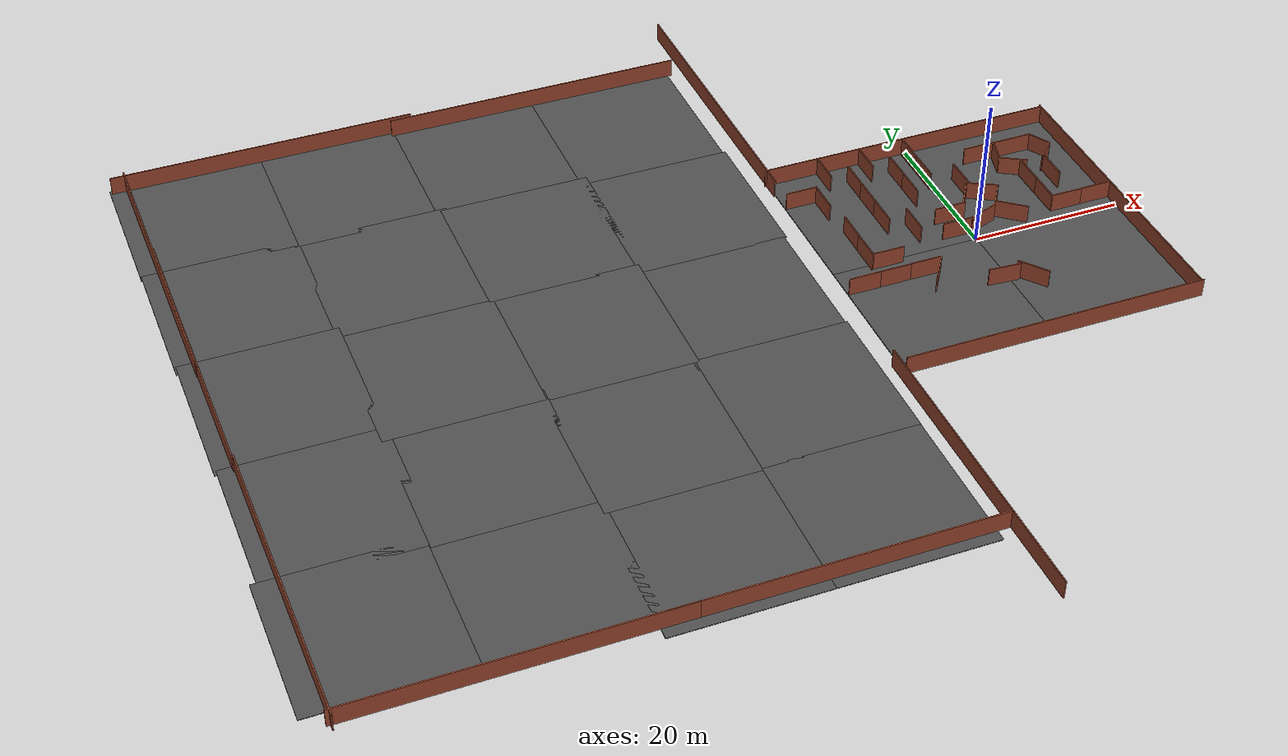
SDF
<sdf version="1.6">
 <world name="default">
  <light name="sun" type="directional">
   <pose>0 0 10 0 -0 0</pose>
   <diffuse>0.8 0.8 0.8 1</diffuse>
   <specular>0.2 0.2 0.2 1</specular>
   <attenuation>
    <range>1000</range>
    <constant>0.9</constant>
    <linear>0.01</linear>
    <quadratic>0.001</quadratic>
   </attenuation>
   <direction>-0.5 0.1 -0.9</direction>
  </light>
  <model name="ground_plane">
   <static>1</static>
   <link name="link">
    <collision name="collision">
     <geometry><plane><normal>0 0 1</normal><size>100 100</size></plane></geometry>
     <surface><friction><ode><mu>100</mu><mu2>50</mu2></ode></friction></surface>
    </collision>
    <visual name="visual">
     <cast_shadows>0</cast_shadows>
     <geometry><plane><normal>0 0 1</normal><size>100 100</size></plane></geometry>
     <material>
      <script><uri>file://media/materials/scripts/gazebo.material</uri><name>Gazebo/Grey</name></script>
     </material>
    </visual>
   </link>
  </model>
  <physics name="default_physics" default="0" type="ode">
   <max_step_size>0.001</max_step_size>
   <real_time_factor>1</real_time_factor>
   <real_time_update_rate>1000</real_time_update_rate>
  </physics>
  <scene><ambient>0.4 0.4 0.4 1</ambient><background>0.7 0.7 0.7 1</background><shadows>1</shadows></scene>
  <spherical_coordinates>
   <surface_model>EARTH_WGS84</surface_model>
   <latitude_deg>0</latitude_deg>
   <longitude_deg>0</longitude_deg>
   <elevation>0</elevation>
   <heading_deg>0</heading_deg>
  </spherical_coordinates>
  <model name="asphalt_plane">
   <static>1</static>
   <link name="link">
    <collision name="collision"><geometry><box><size>20 20 0.1</size></box></geometry></collision>
    <visual name="visual">
     <cast_shadows>0</cast_shadows>
     <geometry><box><size>20 20 0.1</size></box></geometry>
     <material>
      <script>
       <uri>model://asphalt_plane/materials/scripts</uri>
       <uri>model://asphalt_plane/materials/textures</uri>
       <name>vrc/asphalt</name>
      </script>
     </material>
    </visual>
   </link>
   <pose>10 10 0 0 -0 0</pose>
  </model>
  <model name="asphalt_plane_0">
   <static>1</static>
   <link name="link">
    <collision name="collision"><geometry><box><size>20 20 0.1</size></box></geometry></collision>
    <visual name="visual">
     <cast_shadows>0</cast_shadows>
     <geometry><box><size>20 20 0.1</size></box></geometry>
     <material>
      <script>
       <uri>model://asphalt_plane/materials/scripts</uri>
       <uri>model://asphalt_plane/materials/textures</uri>
       <name>vrc/asphalt</name>
      </script>
     </material>
    </visual>
   </link>
   <pose>-10 10 0 0 -0 0</pose>
  </model>
  <model name="asphalt_plane_1">
   <static>1</static>
   <link name="link">
    <collision name="collision"><geometry><box><size>20 20 0.1</size></box></geometry></collision>
    <visual name="visual">
     <cast_shadows>0</cast_shadows>
     <geometry><box><size>20 20 0.1</size></box></geometry>
     <material>
      <script>
       <uri>model://asphalt_plane/materials/scripts</uri>
       <uri>model://asphalt_plane/materials/textures</uri>
       <name>vrc/asphalt</name>
      </script>
     </material>
    </visual>
   </link>
   <pose>-10 -10 0 0 -0 0</pose>
  </model>
  <model name="asphalt_plane_2">
   <static>1</static>
   <link name="link">
    <collision name="collision"><geometry><box><size>20 20 0.1</size></box></geometry></collision>
    <visual name="visual">
     <cast_shadows>0</cast_shadows>
     <geometry><box><size>20 20 0.1</size></box></geometry>
     <material>
      <script>
       <uri>model://asphalt_plane/materials/scripts</uri>
       <uri>model://asphalt_plane/materials/textures</uri>
       <name>vrc/asphalt</name>
      </script>
     </material>
    </visual>
   </link>
   <pose>10 -10 0 0 -0 0</pose>
  </model>
  <model name="longwall">
   <pose>0.229981 -20.0786 0 0 -0 0</pose>
   <link name="Wall_0">
    <collision name="Wall_0_Collision">
     <geometry><box><size>40.5 0.15 2.5</size></box></geometry>
     <pose>0 0 1.25 0 -0 0</pose>
    </collision>
    <visual name="Wall_0_Visual">
     <pose>0 0 1.25 0 -0 0</pose>
     <geometry><box><size>40.5 0.15 2.5</size></box></geometry>
     <material>
      <script><uri>file://media/materials/scripts/gazebo.material</uri><name>Gazebo/Bricks</name></script>
      <ambient>1 1 1 1</ambient>
     </material>
    </visual>
    <pose>1e-06 0 0 0 -0 0</pose>
   </link>
   <static>1</static>
  </model>
  <model name="longwall_0_clone">
   <pose>20.1053 0.258056 0 0 0 -1.57092</pose>
   <link name="Wall_0">
    <collision name="Wall_0_Collision">
     <geometry><box><size>40.5 0.15 2.5</size></box></geometry>
     <pose>0 0 1.25 0 -0 0</pose>
    </collision>
    <visual name="Wall_0_Visual">
     <pose>0 0 1.25 0 -0 0</pose>
     <geometry><box><size>40.5 0.15 2.5</size></box></geometry>
     <material>
      <script><uri>file://media/materials/scripts/gazebo.material</uri><name>Gazebo/Bricks</name></script>
      <ambient>1 1 1 1</ambient>
     </material>
    </visual>
    <pose>1e-06 0 0 0 -0 0</pose>
   </link>
   <static>1</static>
  </model>
  <model name="longwall_clone">
   <pose>-0.214439 20.0862 0 0 -0 0</pose>
   <link name="Wall_0">
    <collision name="Wall_0_Collision">
     <geometry><box><size>40.5 0.15 2.5</size></box></geometry>
     <pose>0 0 1.25 0 -0 0</pose>
    </collision>
    <visual name="Wall_0_Visual">
     <pose>0 0 1.25 0 -0 0</pose>
     <geometry><box><size>40.5 0.15 2.5</size></box></geometry>
     <material>
      <script><uri>file://media/materials/scripts/gazebo.material</uri><name>Gazebo/Bricks</name></script>
      <ambient>1 1 1 1</ambient>
     </material>
    </visual>
    <pose>1e-06 0 0 0 -0 0</pose>
   </link>
   <static>1</static>
  </model>
  <model name="room1">
   <pose>13.1523 12.4323 0 0 -0 0</pose>
   <link name="Wall_11">
    <collision name="Wall_11_Collision">
     <geometry><box><size>3.25 0.15 2.5</size></box></geometry>
     <pose>0 0 1.25 0 -0 0</pose>
    </collision>
    <visual name="Wall_11_Visual">
     <pose>0 0 1.25 0 -0 0</pose>
     <geometry><box><size>3.25 0.15 2.5</size></box></geometry>
     <material>
      <script><uri>file://media/materials/scripts/gazebo.material</uri><name>Gazebo/Bricks</name></script>
      <ambient>1 1 1 1</ambient>
     </material>
    </visual>
    <pose>3.12132 1.19483 0 0 0 -1.0472</pose>
   </link>
   <link name="Wall_12">
    <collision name="Wall_12_Collision">
     <geometry><box><size>3.5 0.15 2.5</size></box></geometry>
     <pose>0 0 1.25 0 -0 0</pose>
    </collision>
    <visual name="Wall_12_Visual">
     <pose>0 0 1.25 0 -0 0</pose>
     <geometry><box><size>3.5 0.15 2.5</size></box></geometry>
     <material>
      <script><uri>file://media/materials/scripts/gazebo.material</uri><name>Gazebo/Bricks</name></script>
      <ambient>1 1 1 1</ambient>
     </material>
    </visual>
    <pose>2.71192 -1.33192 0 0 0 -2.35619</pose>
   </link>
   <link name="Wall_7">
    <collision name="Wall_7_Collision">
     <geometry><box><size>5.52935 0.15 2.5</size></box></geometry>
     <pose>0 0 1.25 0 -0 0</pose>
    </collision>
    <visual name="Wall_7_Visual">
     <pose>0 0 1.25 0 -0 0</pose>
     <geometry><box><size>5.52935 0.15 2.5</size></box></geometry>
     <material>
      <script><uri>file://media/materials/scripts/gazebo.material</uri><name>Gazebo/Bricks</name></script>
      <ambient>1 1 1 1</ambient>
     </material>
    </visual>
    <pose>-0.343285 2.51793 0 0 0 -3.13444</pose>
   </link>
   <link name="Wall_8">
    <collision name="Wall_8_Collision">
     <geometry><box><size>3.5 0.15 2.5</size></box></geometry>
     <pose>0 0 1.25 0 -0 0</pose>
    </collision>
    <visual name="Wall_8_Visual">
     <pose>0 0 1.25 0 -0 0</pose>
     <geometry><box><size>3.5 0.15 2.5</size></box></geometry>
     <material>
      <script><uri>file://media/materials/scripts/gazebo.material</uri><name>Gazebo/Bricks</name></script>
      <ambient>1 1 1 1</ambient>
     </material>
    </visual>
    <pose>-3.46641 0.880761 0 0 0 -1.8326</pose>
   </link>
   <link name="Wall_9">
    <collision name="Wall_9_Collision">
     <geometry><box><size>3.75 0.15 2.5</size></box></geometry>
     <pose>0 0 1.25 0 -0 0</pose>
    </collision>
    <visual name="Wall_9_Visual">
     <pose>0 0 1.25 0 -0 0</pose>
     <geometry><box><size>3.75 0.15 2.5</size></box></geometry>
     <material>
      <script><uri>file://media/materials/scripts/gazebo.material</uri><name>Gazebo/Bricks</name></script>
      <ambient>1 1 1 1</ambient>
     </material>
    </visual>
    <pose>-2.34109 -1.63716 0 0 0 -0.523599</pose>
   </link>
   <static>1</static>
  </model>
  <model name="worlds_1">
   <pose>3 10.4406 0 0 -0 0</pose>
   <link name="Wall_0">
    <collision name="Wall_0_Collision">
     <geometry><box><size>4.25 0.15 2.5</size></box></geometry>
     <pose>0 0 1.25 0 -0 0</pose>
    </collision>
    <visual name="Wall_0_Visual">
     <pose>0 0 1.25 0 -0 0</pose>
     <geometry><box><size>4.25 0.15 2.5</size></box></geometry>
     <material>
      <script><uri>file://media/materials/scripts/gazebo.material</uri><name>Gazebo/Bricks</name></script>
      <ambient>1 1 1 1</ambient>
     </material>
    </visual>
    <pose>0 -0 0 0 -0 1.5708</pose>
   </link>
   <static>1</static>
  </model>
  <model name="worlds_2">
   <pose>4.42901 7.33195 0 0 -0 1.08023</pose>
   <link name="Wall_0">
    <collision name="Wall_0_Collision">
     <geometry><box><size>4.25 0.15 2.5</size></box></geometry>
     <pose>0 0 1.25 0 -0 0</pose>
    </collision>
    <visual name="Wall_0_Visual">
     <pose>0 0 1.25 0 -0 0</pose>
     <geometry><box><size>4.25 0.15 2.5</size></box></geometry>
     <material>
      <script><uri>file://media/materials/scripts/gazebo.material</uri><name>Gazebo/Bricks</name></script>
      <ambient>1 1 1 1</ambient>
     </material>
    </visual>
    <pose>0 -0 0 0 -0 1.5708</pose>
   </link>
   <static>1</static>
  </model>
  <model name="worlds_0_clone">
   <pose>-1 -9 0 0 -0 1.49697</pose>
   <link name="Wall_0">
    <collision name="Wall_0_Collision">
     <geometry><box><size>4.25 0.15 2.5</size></box></geometry>
     <pose>0 0 1.25 0 -0 0</pose>
    </collision>
    <visual name="Wall_0_Visual">
     <pose>0 0 1.25 0 -0 0</pose>
     <geometry><box><size>4.25 0.15 2.5</size></box></geometry>
     <material>
      <script><uri>file://media/materials/scripts/gazebo.material</uri><name>Gazebo/Bricks</name></script>
      <ambient>1 1 1 1</ambient>
     </material>
    </visual>
    <pose>0 -0 0 0 -0 1.5708</pose>
   </link>
   <static>1</static>
  </model>
  <model name="worlds_2_clone">
   <pose>2.34689 -10.1873 0 0 -0 0.67691</pose>
   <link name="Wall_0">
    <collision name="Wall_0_Collision">
     <geometry><box><size>4.25 0.15 2.5</size></box></geometry>
     <pose>0 0 1.25 0 -0 0</pose>
    </collision>
    <visual name="Wall_0_Visual">
     <pose>0 0 1.25 0 -0 0</pose>
     <geometry><box><size>4.25 0.15 2.5</size></box></geometry>
     <material>
      <script><uri>file://media/materials/scripts/gazebo.material</uri><name>Gazebo/Bricks</name></script>
      <ambient>1 1 1 1</ambient>
     </material>
    </visual>
    <pose>0 -0 0 0 -0 1.5708</pose>
   </link>
   <static>1</static>
  </model>
  <model name="worlds_1_clone">
   <pose>11.6021 8.07399 0 0 -0 0</pose>
   <link name="Wall_0">
    <collision name="Wall_0_Collision">
     <geometry><box><size>4.25 0.15 2.5</size></box></geometry>
     <pose>0 0 1.25 0 -0 0</pose>
    </collision>
    <visual name="Wall_0_Visual">
     <pose>0 0 1.25 0 -0 0</pose>
     <geometry><box><size>4.25 0.15 2.5</size></box></geometry>
     <material>
      <script><uri>file://media/materials/scripts/gazebo.material</uri><name>Gazebo/Bricks</name></script>
      <ambient>1 1 1 1</ambient>
     </material>
    </visual>
    <pose>0 -0 0 0 -0 1.5708</pose>
   </link>
   <static>1</static>
  </model>
  <model name="worlds_1_clone_0">
   <pose>11.6134 3.89135 0 0 -0 0</pose>
   <link name="Wall_0">
    <collision name="Wall_0_Collision">
     <geometry><box><size>4.25 0.15 2.5</size></box></geometry>
     <pose>0 0 1.25 0 -0 0</pose>
    </collision>
    <visual name="Wall_0_Visual">
     <pose>0 0 1.25 0 -0 0</pose>
     <geometry><box><size>4.25 0.15 2.5</size></box></geometry>
     <material>
      <script><uri>file://media/materials/scripts/gazebo.material</uri><name>Gazebo/Bricks</name></script>
      <ambient>1 1 1 1</ambient>
     </material>
    </visual>
    <pose>0 -0 0 0 -0 1.5708</pose>
   </link>
   <static>1</static>
  </model>
  <model name="worlds_1_clone_0_clone">
   <pose>13.736 1.79456 0 0 0 -1.57092</pose>
   <link name="Wall_0">
    <collision name="Wall_0_Collision">
     <geometry><box><size>4.25 0.15 2.5</size></box></geometry>
     <pose>0 0 1.25 0 -0 0</pose>
    </collision>
    <visual name="Wall_0_Visual">
     <pose>0 0 1.25 0 -0 0</pose>
     <geometry><box><size>4.25 0.15 2.5</size></box></geometry>
     <material>
      <script><uri>file://media/materials/scripts/gazebo.material</uri><name>Gazebo/Bricks</name></script>
      <ambient>1 1 1 1</ambient>
     </material>
    </visual>
    <pose>0 -0 0 0 -0 1.5708</pose>
   </link>
   <static>1</static>
  </model>
  <model name="worlds_1_clone_0_clone_clone">
   <pose>17.9203 1.82357 0 0 0 -1.57092</pose>
   <link name="Wall_0">
    <collision name="Wall_0_Collision">
     <geometry><box><size>4.25 0.15 2.5</size></box></geometry>
     <pose>0 0 1.25 0 -0 0</pose>
    </collision>
    <visual name="Wall_0_Visual">
     <pose>0 0 1.25 0 -0 0</pose>
     <geometry><box><size>4.25 0.15 2.5</size></box></geometry>
     <material>
      <script><uri>file://media/materials/scripts/gazebo.material</uri><name>Gazebo/Bricks</name></script>
      <ambient>1 1 1 1</ambient>
     </material>
    </visual>
    <pose>0 -0 0 0 -0 1.5708</pose>
   </link>
   <static>1</static>
  </model>
  <model name="worlds_1_clone_0_clone_clone_0">
   <pose>8 15 0 0 0 -1.57092</pose>
   <link name="Wall_0">
    <collision name="Wall_0_Collision">
     <geometry><box><size>4.25 0.15 2.5</size></box></geometry>
     <pose>0 0 1.25 0 -0 0</pose>
    </collision>
    <visual name="Wall_0_Visual">
     <pose>0 0 1.25 0 -0 0</pose>
     <geometry><box><size>4.25 0.15 2.5</size></box></geometry>
     <material>
      <script><uri>file://media/materials/scripts/gazebo.material</uri><name>Gazebo/Bricks</name></script>
      <ambient>1 1 1 1</ambient>
     </material>
    </visual>
    <pose>0 -0 0 0 -0 1.5708</pose>
   </link>
   <static>1</static>
  </model>
  <model name="worlds_1_clone_0_clone_clone_0_clone">
   <pose>-17.8162 14.4688 0 0 0 -1.57092</pose>
   <link name="Wall_0">
    <collision name="Wall_0_Collision">
     <geometry><box><size>4.25 0.15 2.5</size></box></geometry>
     <pose>0 0 1.25 0 -0 0</pose>
    </collision>
    <visual name="Wall_0_Visual">
     <pose>0 0 1.25 0 -0 0</pose>
     <geometry><box><size>4.25 0.15 2.5</size></box></geometry>
     <material>
      <script><uri>file://media/materials/scripts/gazebo.material</uri><name>Gazebo/Bricks</name></script>
      <ambient>1 1 1 1</ambient>
     </material>
    </visual>
    <pose>0 -0 0 0 -0 1.5708</pose>
   </link>
   <static>1</static>
  </model>
  <model name="worlds_1_clone_1">
   <pose>-13 18 0 0 -0 0</pose>
   <link name="Wall_0">
    <collision name="Wall_0_Collision">
     <geometry><box><size>4.25 0.15 2.5</size></box></geometry>
     <pose>0 0 1.25 0 -0 0</pose>
    </collision>
    <visual name="Wall_0_Visual">
     <pose>0 0 1.25 0 -0 0</pose>
     <geometry><box><size>4.25 0.15 2.5</size></box></geometry>
     <material>
      <script><uri>file://media/materials/scripts/gazebo.material</uri><name>Gazebo/Bricks</name></script>
      <ambient>1 1 1 1</ambient>
     </material>
    </visual>
    <pose>0 -0 0 0 -0 1.5708</pose>
   </link>
   <static>1</static>
  </model>
  <model name="worlds_1_clone_1_clone">
   <pose>-15.7734 12.3225 0 0 -0 0</pose>
   <link name="Wall_0">
    <collision name="Wall_0_Collision">
     <geometry><box><size>4.25 0.15 2.5</size></box></geometry>
     <pose>0 0 1.25 0 -0 0</pose>
    </collision>
    <visual name="Wall_0_Visual">
     <pose>0 0 1.25 0 -0 0</pose>
     <geometry><box><size>4.25 0.15 2.5</size></box></geometry>
     <material>
      <script><uri>file://media/materials/scripts/gazebo.material</uri><name>Gazebo/Bricks</name></script>
      <ambient>1 1 1 1</ambient>
     </material>
    </visual>
    <pose>0 -0 0 0 -0 1.5708</pose>
   </link>
   <static>1</static>
  </model>
  <model name="worlds_1_clone_1_clone_clone">
   <pose>-15.0638 5.287 0 0 -0 0</pose>
   <link name="Wall_0">
    <collision name="Wall_0_Collision">
     <geometry><box><size>4.25 0.15 2.5</size></box></geometry>
     <pose>0 0 1.25 0 -0 0</pose>
    </collision>
    <visual name="Wall_0_Visual">
     <pose>0 0 1.25 0 -0 0</pose>
     <geometry><box><size>4.25 0.15 2.5</size></box></geometry>
     <material>
      <script><uri>file://media/materials/scripts/gazebo.material</uri><name>Gazebo/Bricks</name></script>
      <ambient>1 1 1 1</ambient>
     </material>
    </visual>
    <pose>0 -0 0 0 -0 1.5708</pose>
   </link>
   <static>1</static>
  </model>
  <model name="worlds_1_clone_1_clone_clone_0">
   <pose>-15.0769 1.18275 0 0 -0 0</pose>
   <link name="Wall_0">
    <collision name="Wall_0_Collision">
     <geometry><box><size>4.25 0.15 2.5</size></box></geometry>
     <pose>0 0 1.25 0 -0 0</pose>
    </collision>
    <visual name="Wall_0_Visual">
     <pose>0 0 1.25 0 -0 0</pose>
     <geometry><box><size>4.25 0.15 2.5</size></box></geometry>
     <material>
      <script><uri>file://media/materials/scripts/gazebo.material</uri><name>Gazebo/Bricks</name></script>
      <ambient>1 1 1 1</ambient>
     </material>
    </visual>
    <pose>0 -0 0 0 -0 1.5708</pose>
   </link>
   <static>1</static>
  </model>
  <model name="worlds_1_clone_0_clone_clone_0_clone_clone">
   <pose>-17.8054 -4.32089 0 0 0 -1.57092</pose>
   <link name="Wall_0">
    <collision name="Wall_0_Collision">
     <geometry><box><size>4.25 0.15 2.5</size></box></geometry>
     <pose>0 0 1.25 0 -0 0</pose>
    </collision>
    <visual name="Wall_0_Visual">
     <pose>0 0 1.25 0 -0 0</pose>
     <geometry><box><size>4.25 0.15 2.5</size></box></geometry>
     <material>
      <script><uri>file://media/materials/scripts/gazebo.material</uri><name>Gazebo/Bricks</name></script>
      <ambient>1 1 1 1</ambient>
     </material>
    </visual>
    <pose>0 -0 0 0 -0 1.5708</pose>
   </link>
   <static>1</static>
  </model>
  <model name="worlds_1_clone_0_clone_clone_0_clone_clone_0">
   <pose>-13.6699 -4.29855 0 0 0 -1.57092</pose>
   <link name="Wall_0">
    <collision name="Wall_0_Collision">
     <geometry><box><size>4.25 0.15 2.5</size></box></geometry>
     <pose>0 0 1.25 0 -0 0</pose>
    </collision>
    <visual name="Wall_0_Visual">
     <pose>0 0 1.25 0 -0 0</pose>
     <geometry><box><size>4.25 0.15 2.5</size></box></geometry>
     <material>
      <script><uri>file://media/materials/scripts/gazebo.material</uri><name>Gazebo/Bricks</name></script>
      <ambient>1 1 1 1</ambient>
     </material>
    </visual>
    <pose>0 -0 0 0 -0 1.5708</pose>
   </link>
   <static>1</static>
  </model>
  <model name="worlds_1_clone_0_clone_clone_0_clone_clone_1">
   <pose>-9.47339 -4.28892 0 0 0 -1.57092</pose>
   <link name="Wall_0">
    <collision name="Wall_0_Collision">
     <geometry><box><size>4.25 0.15 2.5</size></box></geometry>
     <pose>0 0 1.25 0 -0 0</pose>
    </collision>
    <visual name="Wall_0_Visual">
     <pose>0 0 1.25 0 -0 0</pose>
     <geometry><box><size>4.25 0.15 2.5</size></box></geometry>
     <material>
      <script><uri>file://media/materials/scripts/gazebo.material</uri><name>Gazebo/Bricks</name></script>
      <ambient>1 1 1 1</ambient>
     </material>
    </visual>
    <pose>0 -0 0 0 -0 1.5708</pose>
   </link>
   <static>1</static>
  </model>
  <model name="worlds_1_clone_1_clone_0">
   <pose>-0.708445 17.9147 0 0 -0 0</pose>
   <link name="Wall_0">
    <collision name="Wall_0_Collision">
     <geometry><box><size>4.25 0.15 2.5</size></box></geometry>
     <pose>0 0 1.25 0 -0 0</pose>
    </collision>
    <visual name="Wall_0_Visual">
     <pose>0 0 1.25 0 -0 0</pose>
     <geometry><box><size>4.25 0.15 2.5</size></box></geometry>
     <material>
      <script><uri>file://media/materials/scripts/gazebo.material</uri><name>Gazebo/Bricks</name></script>
      <ambient>1 1 1 1</ambient>
     </material>
    </visual>
    <pose>0 -0 0 0 -0 1.5708</pose>
   </link>
   <static>1</static>
  </model>
  <model name="worlds_1_clone_1_clone_1">
   <pose>-0.716318 13.714 0 0 -0 0</pose>
   <link name="Wall_0">
    <collision name="Wall_0_Collision">
     <geometry><box><size>4.25 0.15 2.5</size></box></geometry>
     <pose>0 0 1.25 0 -0 0</pose>
    </collision>
    <visual name="Wall_0_Visual">
     <pose>0 0 1.25 0 -0 0</pose>
     <geometry><box><size>4.25 0.15 2.5</size></box></geometry>
     <material>
      <script><uri>file://media/materials/scripts/gazebo.material</uri><name>Gazebo/Bricks</name></script>
      <ambient>1 1 1 1</ambient>
     </material>
    </visual>
    <pose>0 -0 0 0 -0 1.5708</pose>
   </link>
   <static>1</static>
  </model>
  <model name="worlds_1_clone_1_clone_2">
   <pose>-7 18 0 0 -0 0</pose>
   <link name="Wall_0">
    <collision name="Wall_0_Collision">
     <geometry><box><size>4.25 0.15 2.5</size></box></geometry>
     <pose>0 0 1.25 0 -0 0</pose>
    </collision>
    <visual name="Wall_0_Visual">
     <pose>0 0 1.25 0 -0 0</pose>
     <geometry><box><size>4.25 0.15 2.5</size></box></geometry>
     <material>
      <script><uri>file://media/materials/scripts/gazebo.material</uri><name>Gazebo/Bricks</name></script>
      <ambient>1 1 1 1</ambient>
     </material>
    </visual>
    <pose>0 -0 0 0 -0 1.5708</pose>
   </link>
   <static>1</static>
  </model>
  <model name="worlds_1_clone_1_clone_3">
   <pose>-10 15 0 0 -0 0</pose>
   <link name="Wall_0">
    <collision name="Wall_0_Collision">
     <geometry><box><size>4.25 0.15 2.5</size></box></geometry>
     <pose>0 0 1.25 0 -0 0</pose>
    </collision>
    <visual name="Wall_0_Visual">
     <pose>0 0 1.25 0 -0 0</pose>
     <geometry><box><size>4.25 0.15 2.5</size></box></geometry>
     <material>
      <script><uri>file://media/materials/scripts/gazebo.material</uri><name>Gazebo/Bricks</name></script>
      <ambient>1 1 1 1</ambient>
     </material>
    </visual>
    <pose>0 -0 0 0 -0 1.5708</pose>
   </link>
   <static>1</static>
  </model>
  <model name="worlds_1_clone_1_clone_4">
   <pose>-10 11 0 0 -0 0</pose>
   <link name="Wall_0">
    <collision name="Wall_0_Collision">
     <geometry><box><size>4.25 0.15 2.5</size></box></geometry>
     <pose>0 0 1.25 0 -0 0</pose>
    </collision>
    <visual name="Wall_0_Visual">
     <pose>0 0 1.25 0 -0 0</pose>
     <geometry><box><size>4.25 0.15 2.5</size></box></geometry>
     <material>
      <script><uri>file://media/materials/scripts/gazebo.material</uri><name>Gazebo/Bricks</name></script>
      <ambient>1 1 1 1</ambient>
     </material>
    </visual>
    <pose>0 -0 0 0 -0 1.5708</pose>
   </link>
   <static>1</static>
  </model>
  <model name="worlds_1_clone_1_clone_5">
   <pose>-4 15 0 0 -0 0</pose>
   <link name="Wall_0">
    <collision name="Wall_0_Collision">
     <geometry><box><size>4.25 0.15 2.5</size></box></geometry>
     <pose>0 0 1.25 0 -0 0</pose>
    </collision>
    <visual name="Wall_0_Visual">
     <pose>0 0 1.25 0 -0 0</pose>
     <geometry><box><size>4.25 0.15 2.5</size></box></geometry>
     <material>
      <script><uri>file://media/materials/scripts/gazebo.material</uri><name>Gazebo/Bricks</name></script>
      <ambient>1 1 1 1</ambient>
     </material>
    </visual>
    <pose>0 -0 0 0 -0 1.5708</pose>
   </link>
   <static>1</static>
  </model>
  <model name="worlds_1_clone_1_clone_6">
   <pose>-4 11 0 0 -0 0</pose>
   <link name="Wall_0">
    <collision name="Wall_0_Collision">
     <geometry><box><size>4.25 0.15 2.5</size></box></geometry>
     <pose>0 0 1.25 0 -0 0</pose>
    </collision>
    <visual name="Wall_0_Visual">
     <pose>0 0 1.25 0 -0 0</pose>
     <geometry><box><size>4.25 0.15 2.5</size></box></geometry>
     <material>
      <script><uri>file://media/materials/scripts/gazebo.material</uri><name>Gazebo/Bricks</name></script>
      <ambient>1 1 1 1</ambient>
     </material>
    </visual>
    <pose>0 -0 0 0 -0 1.5708</pose>
   </link>
   <static>1</static>
  </model>
  <model name="worlds_1_clone_1_clone_7">
   <pose>-10 7 0 0 -0 0</pose>
   <link name="Wall_0">
    <collision name="Wall_0_Collision">
     <geometry><box><size>4.25 0.15 2.5</size></box></geometry>
     <pose>0 0 1.25 0 -0 0</pose>
    </collision>
    <visual name="Wall_0_Visual">
     <pose>0 0 1.25 0 -0 0</pose>
     <geometry><box><size>4.25 0.15 2.5</size></box></geometry>
     <material>
      <script><uri>file://media/materials/scripts/gazebo.material</uri><name>Gazebo/Bricks</name></script>
      <ambient>1 1 1 1</ambient>
     </material>
    </visual>
    <pose>0 -0 0 0 -0 1.5708</pose>
   </link>
   <static>1</static>
  </model>
  <model name="worlds_1_clone_0_clone_clone_0_clone_clone_0_clone">
   <pose>-12.8938 -0.809745 0 0 0 -1.57092</pose>
   <link name="Wall_0">
    <collision name="Wall_0_Collision">
     <geometry><box><size>4.25 0.15 2.5</size></box></geometry>
     <pose>0 0 1.25 0 -0 0</pose>
    </collision>
    <visual name="Wall_0_Visual">
     <pose>0 0 1.25 0 -0 0</pose>
     <geometry><box><size>4.25 0.15 2.5</size></box></geometry>
     <material>
      <script><uri>file://media/materials/scripts/gazebo.material</uri><name>Gazebo/Bricks</name></script>
      <ambient>1 1 1 1</ambient>
     </material>
    </visual>
    <pose>0 -0 0 0 -0 1.5708</pose>
   </link>
   <static>1</static>
  </model>
  <model name="worlds_1_clone_1_clone_7_clone">
   <pose>-7 4 0 0 -0 0</pose>
   <link name="Wall_0">
    <collision name="Wall_0_Collision">
     <geometry><box><size>4.25 0.15 2.5</size></box></geometry>
     <pose>0 0 1.25 0 -0 0</pose>
    </collision>
    <visual name="Wall_0_Visual">
     <pose>0 0 1.25 0 -0 0</pose>
     <geometry><box><size>4.25 0.15 2.5</size></box></geometry>
     <material>
      <script><uri>file://media/materials/scripts/gazebo.material</uri><name>Gazebo/Bricks</name></script>
      <ambient>1 1 1 1</ambient>
     </material>
    </visual>
    <pose>0 -0 0 0 -0 1.5708</pose>
   </link>
   <static>1</static>
  </model>
  <model name="worlds_1_clone_1_clone_7_clone_clone">
   <pose>1.48825 6.4581 0 0 0 -0.589381</pose>
   <link name="Wall_0">
    <collision name="Wall_0_Collision">
     <geometry><box><size>4.25 0.15 2.5</size></box></geometry>
     <pose>0 0 1.25 0 -0 0</pose>
    </collision>
    <visual name="Wall_0_Visual">
     <pose>0 0 1.25 0 -0 0</pose>
     <geometry><box><size>4.25 0.15 2.5</size></box></geometry>
     <material>
      <script><uri>file://media/materials/scripts/gazebo.material</uri><name>Gazebo/Bricks</name></script>
      <ambient>1 1 1 1</ambient>
     </material>
    </visual>
    <pose>0 -0 0 0 -0 1.5708</pose>
   </link>
   <static>1</static>
  </model>
  <model name="worlds_1_clone_1_clone_7_clone_clone_clone">
   <pose>5 4.58681 0 0 0 -0.589381</pose>
   <link name="Wall_0">
    <collision name="Wall_0_Collision">
     <geometry><box><size>4.25 0.15 2.5</size></box></geometry>
     <pose>0 0 1.25 0 -0 0</pose>
    </collision>
    <visual name="Wall_0_Visual">
     <pose>0 0 1.25 0 -0 0</pose>
     <geometry><box><size>4.25 0.15 2.5</size></box></geometry>
     <material>
      <script><uri>file://media/materials/scripts/gazebo.material</uri><name>Gazebo/Bricks</name></script>
      <ambient>1 1 1 1</ambient>
     </material>
    </visual>
    <pose>0 -0 0 0 -0 1.5708</pose>
   </link>
   <static>1</static>
  </model>
  <model name="worlds_1_clone_0_clone_clone_0_clone_clone_0_clone_clone">
   <pose>-1.54431 4.60476 0 0 0 -1.57092</pose>
   <link name="Wall_0">
    <collision name="Wall_0_Collision">
     <geometry><box><size>4.25 0.15 2.5</size></box></geometry>
     <pose>0 0 1.25 0 -0 0</pose>
    </collision>
    <visual name="Wall_0_Visual">
     <pose>0 0 1.25 0 -0 0</pose>
     <geometry><box><size>4.25 0.15 2.5</size></box></geometry>
     <material>
      <script><uri>file://media/materials/scripts/gazebo.material</uri><name>Gazebo/Bricks</name></script>
      <ambient>1 1 1 1</ambient>
     </material>
    </visual>
    <pose>0 -0 0 0 -0 1.5708</pose>
   </link>
   <static>1</static>
  </model>
  <model name="worlds_1_clone_0_clone_clone_0_clone_clone_0_clone_clone_0">
   <pose>1.87166 2.0906 0 0 0 -1.22347</pose>
   <link name="Wall_0">
    <collision name="Wall_0_Collision">
     <geometry><box><size>4.25 0.15 2.5</size></box></geometry>
     <pose>0 0 1.25 0 -0 0</pose>
    </collision>
    <visual name="Wall_0_Visual">
     <pose>0 0 1.25 0 -0 0</pose>
     <geometry><box><size>4.25 0.15 2.5</size></box></geometry>
     <material>
      <script><uri>file://media/materials/scripts/gazebo.material</uri><name>Gazebo/Bricks</name></script>
      <ambient>1 1 1 1</ambient>
     </material>
    </visual>
    <pose>0 -0 0 0 -0 1.5708</pose>
   </link>
   <static>1</static>
  </model>
  <model name="worlds_1_clone_0_clone_clone_0_clone_clone_0_clone_clone_clone">
   <pose>-2 1.45154 0 0 0 -1.57092</pose>
   <link name="Wall_0">
    <collision name="Wall_0_Collision">
     <geometry><box><size>4.25 0.15 2.5</size></box></geometry>
     <pose>0 0 1.25 0 -0 0</pose>
    </collision>
    <visual name="Wall_0_Visual">
     <pose>0 0 1.25 0 -0 0</pose>
     <geometry><box><size>4.25 0.15 2.5</size></box></geometry>
     <material>
      <script><uri>file://media/materials/scripts/gazebo.material</uri><name>Gazebo/Bricks</name></script>
      <ambient>1 1 1 1</ambient>
     </material>
    </visual>
    <pose>0 -0 0 0 -0 1.5708</pose>
   </link>
   <static>1</static>
  </model>
  <model name="worlds_1_clone_1_clone_7_clone_clone_0">
   <pose>6.00131 2.13117 0 0 -0 0.90029</pose>
   <link name="Wall_0">
    <collision name="Wall_0_Collision">
     <geometry><box><size>4.25 0.15 2.5</size></box></geometry>
     <pose>0 0 1.25 0 -0 0</pose>
    </collision>
    <visual name="Wall_0_Visual">
     <pose>0 0 1.25 0 -0 0</pose>
     <geometry><box><size>4.25 0.15 2.5</size></box></geometry>
     <material>
      <script><uri>file://media/materials/scripts/gazebo.material</uri><name>Gazebo/Bricks</name></script>
      <ambient>1 1 1 1</ambient>
     </material>
    </visual>
    <pose>0 -0 0 0 -0 1.5708</pose>
   </link>
   <static>1</static>
  </model>
  <model name="worlds_1_clone_1_clone_7_clone_clone_clone_0">
   <pose>-8.55218 -6 0 0 0 -0.589381</pose>
   <link name="Wall_0">
    <collision name="Wall_0_Collision">
     <geometry><box><size>4.25 0.15 2.5</size></box></geometry>
     <pose>0 0 1.25 0 -0 0</pose>
    </collision>
    <visual name="Wall_0_Visual">
     <pose>0 0 1.25 0 -0 0</pose>
     <geometry><box><size>4.25 0.15 2.5</size></box></geometry>
     <material>
      <script><uri>file://media/materials/scripts/gazebo.material</uri><name>Gazebo/Bricks</name></script>
      <ambient>1 1 1 1</ambient>
     </material>
    </visual>
    <pose>0 -0 0 0 -0 1.5708</pose>
   </link>
   <static>1</static>
  </model>
  <model name="worlds_1_clone_clone">
   <pose>15 8 0 0 -0 0</pose>
   <link name="Wall_0">
    <collision name="Wall_0_Collision">
     <geometry><box><size>4.25 0.15 2.5</size></box></geometry>
     <pose>0 0 1.25 0 -0 0</pose>
    </collision>
    <visual name="Wall_0_Visual">
     <pose>0 0 1.25 0 -0 0</pose>
     <geometry><box><size>4.25 0.15 2.5</size></box></geometry>
     <material>
      <script><uri>file://media/materials/scripts/gazebo.material</uri><name>Gazebo/Bricks</name></script>
      <ambient>1 1 1 1</ambient>
     </material>
    </visual>
    <pose>0 -0 0 0 -0 1.5708</pose>
   </link>
   <static>1</static>
  </model>
  <gravity>0 0 -9.8</gravity>
  <magnetic_field>6e-06 2.3e-05 -4.2e-05</magnetic_field>
  <atmosphere type="adiabatic"/>
  <model name="asphalt_plane_3">
   <static>1</static>
   <link name="link">
    <collision name="collision"><geometry><box><size>20 20 0.1</size></box></geometry></collision>
    <visual name="visual">
     <cast_shadows>0</cast_shadows>
     <geometry><box><size>20 20 0.1</size></box></geometry>
     <material>
      <script>
       <uri>model://asphalt_plane/materials/scripts</uri>
       <uri>model://asphalt_plane/materials/textures</uri>
       <name>vrc/asphalt</name>
      </script>
     </material>
    </visual>
   </link>
   <pose>-32.6158 38.9183 0 0 -0 0</pose>
  </model>
  <model name="asphalt_plane_4">
   <static>1</static>
   <link name="link">
    <collision name="collision"><geometry><box><size>20 20 0.1</size></box></geometry></collision>
    <visual name="visual">
     <cast_shadows>0</cast_shadows>
     <geometry><box><size>20 20 0.1</size></box></geometry>
     <material>
      <script>
       <uri>model://asphalt_plane/materials/scripts</uri>
       <uri>model://asphalt_plane/materials/textures</uri>
       <name>vrc/asphalt</name>
      </script>
     </material>
    </visual>
   </link>
   <pose>-32.2571 19.075 0 0 -0 0</pose>
  </model>
  <model name="asphalt_plane_4_clone">
   <static>1</static>
   <link name="link">
    <collision name="collision"><geometry><box><size>20 20 0.1</size></box></geometry></collision>
    <visual name="visual">
     <cast_shadows>0</cast_shadows>
     <geometry><box><size>20 20 0.1</size></box></geometry>
     <material>
      <script>
       <uri>model://asphalt_plane/materials/scripts</uri>
       <uri>model://asphalt_plane/materials/textures</uri>
       <name>vrc/asphalt</name>
      </script>
     </material>
    </visual>
   </link>
   <pose>-32.5552 -0.726595 0 0 -0 0</pose>
  </model>
  <model name="asphalt_plane_4_clone_0">
   <static>1</static>
   <link name="link">
    <collision name="collision"><geometry><box><size>20 20 0.1</size></box></geometry></collision>
    <visual name="visual">
     <cast_shadows>0</cast_shadows>
     <geometry><box><size>20 20 0.1</size></box></geometry>
     <material>
      <script>
       <uri>model://asphalt_plane/materials/scripts</uri>
       <uri>model://asphalt_plane/materials/textures</uri>
       <name>vrc/asphalt</name>
      </script>
     </material>
    </visual>
   </link>
   <pose>-32.3132 -18.8732 0 0 -0 0</pose>
  </model>
  <model name="asphalt_plane_4_clone_1">
   <static>1</static>
   <link name="link">
    <collision name="collision"><geometry><box><size>20 20 0.1</size></box></geometry></collision>
    <visual name="visual">
     <cast_shadows>0</cast_shadows>
     <geometry><box><size>20 20 0.1</size></box></geometry>
     <material>
      <script>
       <uri>model://asphalt_plane/materials/scripts</uri>
       <uri>model://asphalt_plane/materials/textures</uri>
       <name>vrc/asphalt</name>
      </script>
     </material>
    </visual>
   </link>
   <pose>-32.3621 -38.691 0 0 -0 0</pose>
  </model>
  <model name="asphalt_plane_4_clone_2">
   <static>1</static>
   <link name="link">
    <collision name="collision"><geometry><box><size>20 20 0.1</size></box></geometry></collision>
    <visual name="visual">
     <cast_shadows>0</cast_shadows>
     <geometry><box><size>20 20 0.1</size></box></geometry>
     <material>
      <script>
       <uri>model://asphalt_plane/materials/scripts</uri>
       <uri>model://asphalt_plane/materials/textures</uri>
       <name>vrc/asphalt</name>
      </script>
     </material>
    </visual>
   </link>
   <pose>-52.1093 39.3829 0 0 -0 0</pose>
  </model>
  <model name="asphalt_plane_4_clone_3">
   <static>1</static>
   <link name="link">
    <collision name="collision"><geometry><box><size>20 20 0.1</size></box></geometry></collision>
    <visual name="visual">
     <cast_shadows>0</cast_shadows>
     <geometry><box><size>20 20 0.1</size></box></geometry>
     <material>
      <script>
       <uri>model://asphalt_plane/materials/scripts</uri>
       <uri>model://asphalt_plane/materials/textures</uri>
       <name>vrc/asphalt</name>
      </script>
     </material>
    </visual>
   </link>
   <pose>-51.4924 20.3942 0 0 -0 0</pose>
  </model>
  <model name="asphalt_plane_4_clone_4">
   <static>1</static>
   <link name="link">
    <collision name="collision"><geometry><box><size>20 20 0.1</size></box></geometry></collision>
    <visual name="visual">
     <cast_shadows>0</cast_shadows>
     <geometry><box><size>20 20 0.1</size></box></geometry>
     <material>
      <script>
       <uri>model://asphalt_plane/materials/scripts</uri>
       <uri>model://asphalt_plane/materials/textures</uri>
       <name>vrc/asphalt</name>
      </script>
     </material>
    </visual>
   </link>
   <pose>-51.8172 0.746758 0 0 -0 0</pose>
  </model>
  <model name="asphalt_plane_4_clone_5">
   <static>1</static>
   <link name="link">
    <collision name="collision"><geometry><box><size>20 20 0.1</size></box></geometry></collision>
    <visual name="visual">
     <cast_shadows>0</cast_shadows>
     <geometry><box><size>20 20 0.1</size></box></geometry>
     <material>
      <script>
       <uri>model://asphalt_plane/materials/scripts</uri>
       <uri>model://asphalt_plane/materials/textures</uri>
       <name>vrc/asphalt</name>
      </script>
     </material>
    </visual>
   </link>
   <pose>-51.4224 -19.174 0 0 -0 0</pose>
  </model>
  <model name="asphalt_plane_4_clone_6">
   <static>1</static>
   <link name="link">
    <collision name="collision"><geometry><box><size>20 20 0.1</size></box></geometry></collision>
    <visual name="visual">
     <cast_shadows>0</cast_shadows>
     <geometry><box><size>20 20 0.1</size></box></geometry>
     <material>
      <script>
       <uri>model://asphalt_plane/materials/scripts</uri>
       <uri>model://asphalt_plane/materials/textures</uri>
       <name>vrc/asphalt</name>
      </script>
     </material>
    </visual>
   </link>
   <pose>-51.9814 -38.6922 0 0 -0 0</pose>
  </model>
  <model name="asphalt_plane_4_clone_7">
   <static>1</static>
   <link name="link">
    <collision name="collision"><geometry><box><size>20 20 0.1</size></box></geometry></collision>
    <visual name="visual">
     <cast_shadows>0</cast_shadows>
     <geometry><box><size>20 20 0.1</size></box></geometry>
     <material>
      <script>
       <uri>model://asphalt_plane/materials/scripts</uri>
       <uri>model://asphalt_plane/materials/textures</uri>
       <name>vrc/asphalt</name>
      </script>
     </material>
    </visual>
   </link>
   <pose>-70.8509 39.7436 0 0 -0 0</pose>
  </model>
  <model name="asphalt_plane_4_clone_8">
   <static>1</static>
   <link name="link">
    <collision name="collision"><geometry><box><size>20 20 0.1</size></box></geometry></collision>
    <visual name="visual">
     <cast_shadows>0</cast_shadows>
     <geometry><box><size>20 20 0.1</size></box></geometry>
     <material>
      <script>
       <uri>model://asphalt_plane/materials/scripts</uri>
       <uri>model://asphalt_plane/materials/textures</uri>
       <name>vrc/asphalt</name>
      </script>
     </material>
    </visual>
   </link>
   <pose>-70.7218 20.6791 0 0 -0 0</pose>
  </model>
  <model name="asphalt_plane_4_clone_9">
   <static>1</static>
   <link name="link">
    <collision name="collision"><geometry><box><size>20 20 0.1</size></box></geometry></collision>
    <visual name="visual">
     <cast_shadows>0</cast_shadows>
     <geometry><box><size>20 20 0.1</size></box></geometry>
     <material>
      <script>
       <uri>model://asphalt_plane/materials/scripts</uri>
       <uri>model://asphalt_plane/materials/textures</uri>
       <name>vrc/asphalt</name>
      </script>
     </material>
    </visual>
   </link>
   <pose>-70.9276 0.948009 0 0 -0 0</pose>
  </model>
  <model name="asphalt_plane_4_clone_10">
   <static>1</static>
   <link name="link">
    <collision name="collision"><geometry><box><size>20 20 0.1</size></box></geometry></collision>
    <visual name="visual">
     <cast_shadows>0</cast_shadows>
     <geometry><box><size>20 20 0.1</size></box></geometry>
     <material>
      <script>
       <uri>model://asphalt_plane/materials/scripts</uri>
       <uri>model://asphalt_plane/materials/textures</uri>
       <name>vrc/asphalt</name>
      </script>
     </material>
    </visual>
   </link>
   <pose>-70.7616 -17.204 0 0 -0 0</pose>
  </model>
  <model name="asphalt_plane_4_clone_11">
   <static>1</static>
   <link name="link">
    <collision name="collision"><geometry><box><size>20 20 0.1</size></box></geometry></collision>
    <visual name="visual">
     <cast_shadows>0</cast_shadows>
     <geometry><box><size>20 20 0.1</size></box></geometry>
     <material>
      <script>
       <uri>model://asphalt_plane/materials/scripts</uri>
       <uri>model://asphalt_plane/materials/textures</uri>
       <name>vrc/asphalt</name>
      </script>
     </material>
    </visual>
   </link>
   <pose>-70.8444 -36.6106 0 0 -0 0</pose>
  </model>
  <model name="asphalt_plane_4_clone_12">
   <static>1</static>
   <link name="link">
    <collision name="collision"><geometry><box><size>20 20 0.1</size></box></geometry></collision>
    <visual name="visual">
     <cast_shadows>0</cast_shadows>
     <geometry><box><size>20 20 0.1</size></box></geometry>
     <material>
      <script>
       <uri>model://asphalt_plane/materials/scripts</uri>
       <uri>model://asphalt_plane/materials/textures</uri>
       <name>vrc/asphalt</name>
      </script>
     </material>
    </visual>
   </link>
   <pose>-90.4202 -35.4592 0 0 -0 0</pose>
  </model>
  <model name="asphalt_plane_4_clone_13">
   <static>1</static>
   <link name="link">
    <collision name="collision"><geometry><box><size>20 20 0.1</size></box></geometry></collision>
    <visual name="visual">
     <cast_shadows>0</cast_shadows>
     <geometry><box><size>20 20 0.1</size></box></geometry>
     <material>
      <script>
       <uri>model://asphalt_plane/materials/scripts</uri>
       <uri>model://asphalt_plane/materials/textures</uri>
       <name>vrc/asphalt</name>
      </script>
     </material>
    </visual>
   </link>
   <pose>-89.6669 -16.8325 0 0 -0 0</pose>
  </model>
  <model name="asphalt_plane_4_clone_14">
   <static>1</static>
   <link name="link">
    <collision name="collision"><geometry><box><size>20 20 0.1</size></box></geometry></collision>
    <visual name="visual">
     <cast_shadows>0</cast_shadows>
     <geometry><box><size>20 20 0.1</size></box></geometry>
     <material>
      <script>
       <uri>model://asphalt_plane/materials/scripts</uri>
       <uri>model://asphalt_plane/materials/textures</uri>
       <name>vrc/asphalt</name>
      </script>
     </material>
    </visual>
   </link>
   <pose>-89.9738 2.41299 0 0 -0 0</pose>
  </model>
  <model name="asphalt_plane_4_clone_15">
   <static>1</static>
   <link name="link">
    <collision name="collision"><geometry><box><size>20 20 0.1</size></box></geometry></collision>
    <visual name="visual">
     <cast_shadows>0</cast_shadows>
     <geometry><box><size>20 20 0.1</size></box></geometry>
     <material>
      <script>
       <uri>model://asphalt_plane/materials/scripts</uri>
       <uri>model://asphalt_plane/materials/textures</uri>
       <name>vrc/asphalt</name>
      </script>
     </material>
    </visual>
   </link>
   <pose>-90.2091 20.8991 0 0 -0 0</pose>
  </model>
  <model name="asphalt_plane_4_clone_16">
   <static>1</static>
   <link name="link">
    <collision name="collision"><geometry><box><size>20 20 0.1</size></box></geometry></collision>
    <visual name="visual">
     <cast_shadows>0</cast_shadows>
     <geometry><box><size>20 20 0.1</size></box></geometry>
     <material>
      <script>
       <uri>model://asphalt_plane/materials/scripts</uri>
       <uri>model://asphalt_plane/materials/textures</uri>
       <name>vrc/asphalt</name>
      </script>
     </material>
    </visual>
   </link>
   <pose>-90.3394 39.9643 0 0 -0 0</pose>
  </model>
  <model name="longwall_clone_clone">
   <pose>-42.2646 48.7542 0 0 -0 0</pose>
   <link name="Wall_0">
    <collision name="Wall_0_Collision">
     <geometry><box><size>40.5 0.15 2.5</size></box></geometry>
     <pose>0 0 1.25 0 -0 0</pose>
    </collision>
    <visual name="Wall_0_Visual">
     <pose>0 0 1.25 0 -0 0</pose>
     <geometry><box><size>40.5 0.15 2.5</size></box></geometry>
     <material>
      <script><uri>file://media/materials/scripts/gazebo.material</uri><name>Gazebo/Bricks</name></script>
      <ambient>1 1 1 1</ambient>
     </material>
    </visual>
    <pose>1e-06 0 0 0 -0 0</pose>
   </link>
   <static>1</static>
  </model>
  <model name="longwall_clone_clone_0">
   <pose>-79.8257 49.3683 0 0 -0 0</pose>
   <link name="Wall_0">
    <collision name="Wall_0_Collision">
     <geometry><box><size>40.5 0.15 2.5</size></box></geometry>
     <pose>0 0 1.25 0 -0 0</pose>
    </collision>
    <visual name="Wall_0_Visual">
     <pose>0 0 1.25 0 -0 0</pose>
     <geometry><box><size>40.5 0.15 2.5</size></box></geometry>
     <material>
      <script><uri>file://media/materials/scripts/gazebo.material</uri><name>Gazebo/Bricks</name></script>
      <ambient>1 1 1 1</ambient>
     </material>
    </visual>
    <pose>1e-06 0 0 0 -0 0</pose>
   </link>
   <static>1</static>
  </model>
  <model name="longwall_clone_clone_1">
   <pose>-41.0655 -47.2211 0 0 -0 0</pose>
   <link name="Wall_0">
    <collision name="Wall_0_Collision">
     <geometry><box><size>40.5 0.15 2.5</size></box></geometry>
     <pose>0 0 1.25 0 -0 0</pose>
    </collision>
    <visual name="Wall_0_Visual">
     <pose>0 0 1.25 0 -0 0</pose>
     <geometry><box><size>40.5 0.15 2.5</size></box></geometry>
     <material>
      <script><uri>file://media/materials/scripts/gazebo.material</uri><name>Gazebo/Bricks</name></script>
      <ambient>1 1 1 1</ambient>
     </material>
    </visual>
    <pose>1e-06 0 0 0 -0 0</pose>
   </link>
   <static>1</static>
  </model>
  <model name="longwall_clone_clone_2">
   <pose>-77.6971 -47.2286 0 0 -0 0</pose>
   <link name="Wall_0">
    <collision name="Wall_0_Collision">
     <geometry><box><size>40.5 0.15 2.5</size></box></geometry>
     <pose>0 0 1.25 0 -0 0</pose>
    </collision>
    <visual name="Wall_0_Visual">
     <pose>0 0 1.25 0 -0 0</pose>
     <geometry><box><size>40.5 0.15 2.5</size></box></geometry>
     <material>
      <script><uri>file://media/materials/scripts/gazebo.material</uri><name>Gazebo/Bricks</name></script>
      <ambient>1 1 1 1</ambient>
     </material>
    </visual>
    <pose>1e-06 0 0 0 -0 0</pose>
   </link>
   <static>1</static>
  </model>
  <model name="longwall_clone_clone_3">
   <pose>-97.5129 -27.7987 0 0 0 -1.56602</pose>
   <link name="Wall_0">
    <collision name="Wall_0_Collision">
     <geometry><box><size>40.5 0.15 2.5</size></box></geometry>
     <pose>0 0 1.25 0 -0 0</pose>
    </collision>
    <visual name="Wall_0_Visual">
     <pose>0 0 1.25 0 -0 0</pose>
     <geometry><box><size>40.5 0.15 2.5</size></box></geometry>
     <material>
      <script><uri>file://media/materials/scripts/gazebo.material</uri><name>Gazebo/Bricks</name></script>
      <ambient>1 1 1 1</ambient>
     </material>
    </visual>
    <pose>1e-06 0 0 0 -0 0</pose>
   </link>
   <static>1</static>
  </model>
  <model name="longwall_clone_clone_3_clone">
   <pose>-97.8799 12.5787 0 0 0 -1.56602</pose>
   <link name="Wall_0">
    <collision name="Wall_0_Collision">
     <geometry><box><size>40.5 0.15 2.5</size></box></geometry>
     <pose>0 0 1.25 0 -0 0</pose>
    </collision>
    <visual name="Wall_0_Visual">
     <pose>0 0 1.25 0 -0 0</pose>
     <geometry><box><size>40.5 0.15 2.5</size></box></geometry>
     <material>
      <script><uri>file://media/materials/scripts/gazebo.material</uri><name>Gazebo/Bricks</name></script>
      <ambient>1 1 1 1</ambient>
     </material>
    </visual>
    <pose>1e-06 0 0 0 -0 0</pose>
   </link>
   <static>1</static>
  </model>
  <model name="longwall_clone_clone_3_clone_0">
   <pose>-98.0801 29.8929 0 0 0 -1.56602</pose>
   <link name="Wall_0">
    <collision name="Wall_0_Collision">
     <geometry><box><size>40.5 0.15 2.5</size></box></geometry>
     <pose>0 0 1.25 0 -0 0</pose>
    </collision>
    <visual name="Wall_0_Visual">
     <pose>0 0 1.25 0 -0 0</pose>
     <geometry><box><size>40.5 0.15 2.5</size></box></geometry>
     <material>
      <script><uri>file://media/materials/scripts/gazebo.material</uri><name>Gazebo/Bricks</name></script>
      <ambient>1 1 1 1</ambient>
     </material>
    </visual>
    <pose>1e-06 0 0 0 -0 0</pose>
   </link>
   <static>1</static>
  </model>
  <model name="longwall_clone_clone_3_clone_1">
   <pose>-20.7451 -38.458 0 0 0 -1.56602</pose>
   <link name="Wall_0">
    <collision name="Wall_0_Collision">
     <geometry><box><size>40.5 0.15 2.5</size></box></geometry>
     <pose>0 0 1.25 0 -0 0</pose>
    </collision>
    <visual name="Wall_0_Visual">
     <pose>0 0 1.25 0 -0 0</pose>
     <geometry><box><size>40.5 0.15 2.5</size></box></geometry>
     <material>
      <script><uri>file://media/materials/scripts/gazebo.material</uri><name>Gazebo/Bricks</name></script>
      <ambient>1 1 1 1</ambient>
     </material>
    </visual>
    <pose>1e-06 0 0 0 -0 0</pose>
   </link>
   <static>1</static>
  </model>
  <model name="longwall_clone_clone_3_clone_2">
   <pose>-20.272 37.8492 0 0 0 -1.56602</pose>
   <link name="Wall_0">
    <collision name="Wall_0_Collision">
     <geometry><box><size>40.5 0.15 2.5</size></box></geometry>
     <pose>0 0 1.25 0 -0 0</pose>
    </collision>
    <visual name="Wall_0_Visual">
     <pose>0 0 1.25 0 -0 0</pose>
     <geometry><box><size>40.5 0.15 2.5</size></box></geometry>
     <material>
      <script><uri>file://media/materials/scripts/gazebo.material</uri><name>Gazebo/Bricks</name></script>
      <ambient>1 1 1 1</ambient>
     </material>
    </visual>
    <pose>1e-06 0 0 0 -0 0</pose>
   </link>
   <static>1</static>
  </model>
 </world>
</sdf>
